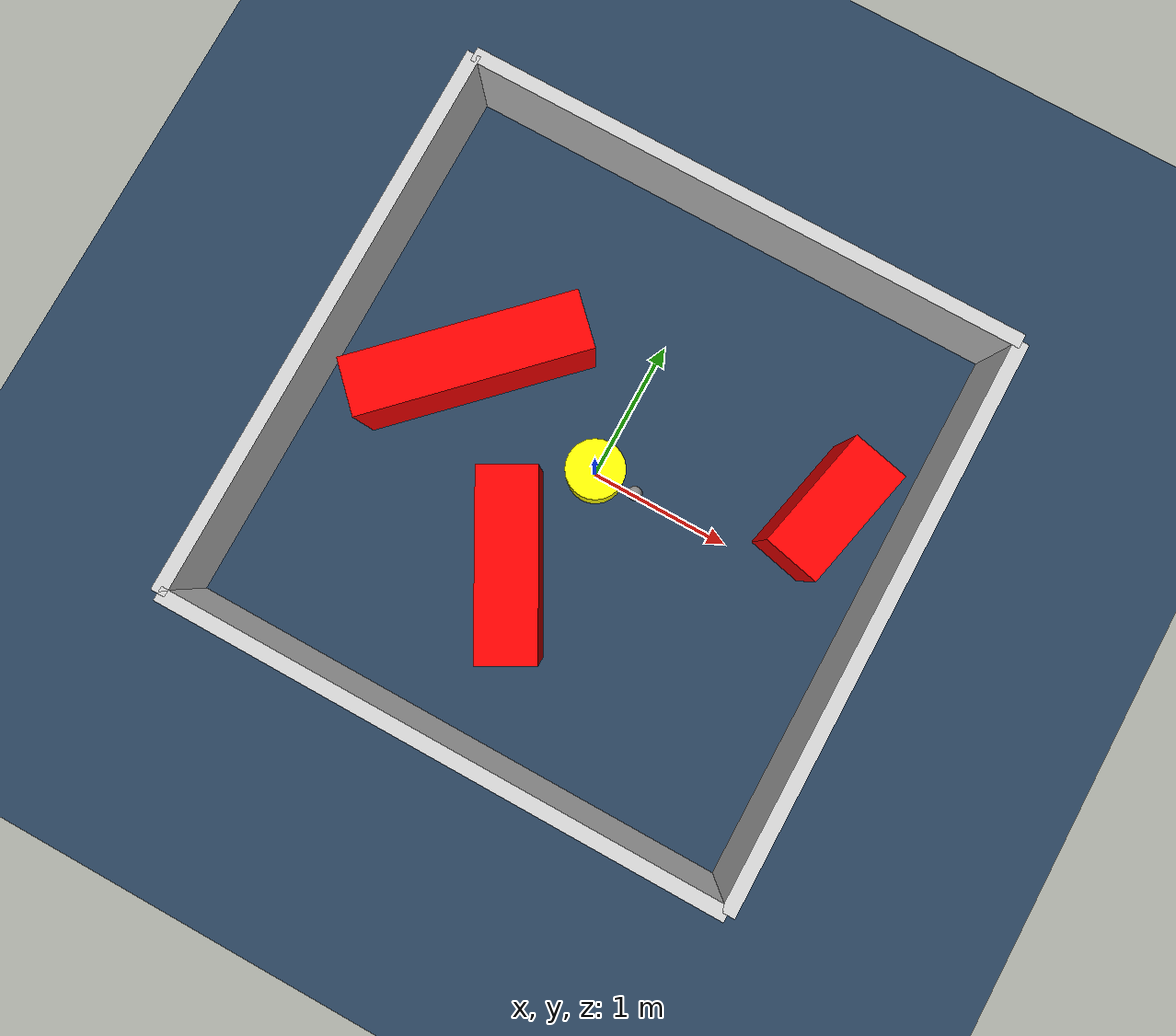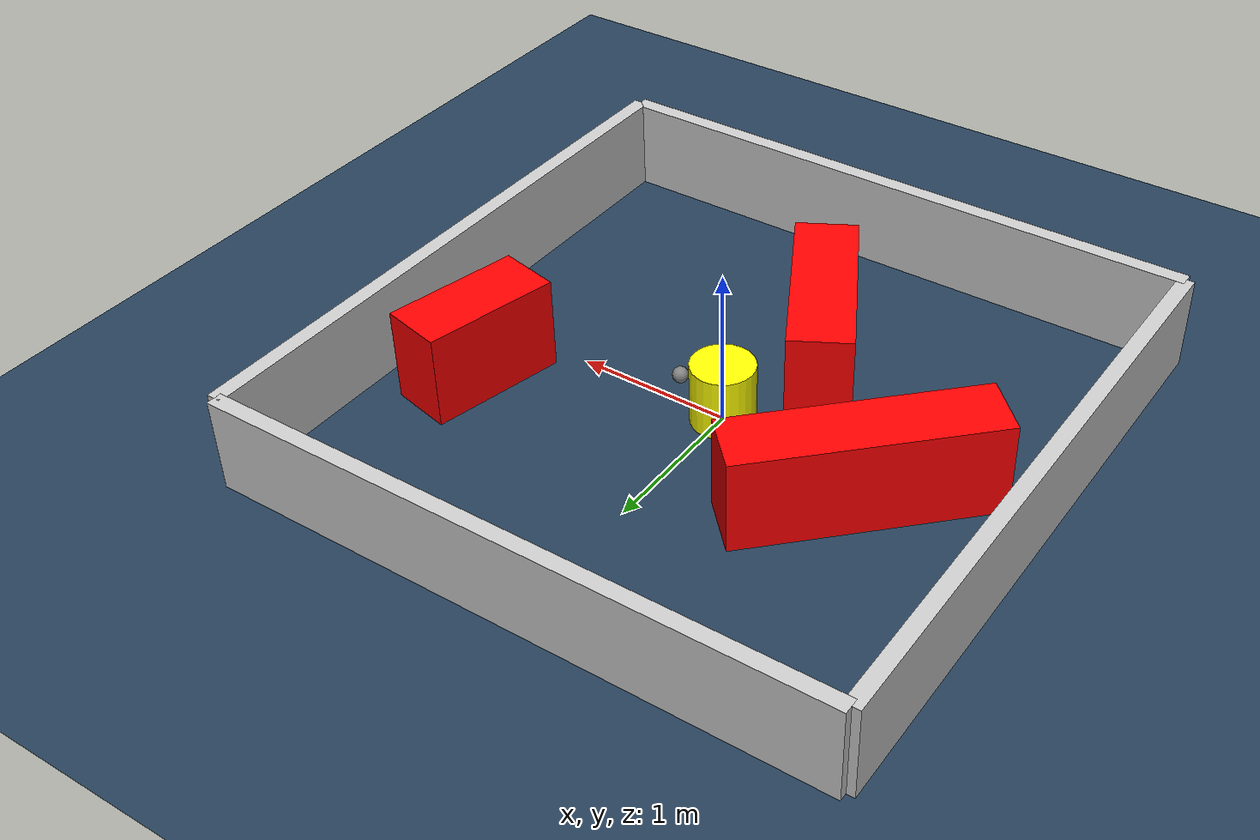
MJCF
<?xml version="1.0" ?>
<mujoco model="generated_environment">
  <option timestep="0.01" integrator="RK4" cone="elliptic"/>
  <default>
    <geom density="1"/>
  </default>
  <asset>
    <texture builtin="gradient" height="3072" rgb1="0.3 0.5 0.7" rgb2="0 0 0" type="skybox" width="512"/>
    <texture builtin="checker" height="300" mark="edge" markrgb="0.8 0.8 0.8" name="groundplane" rgb1="0.2 0.3 0.4" rgb2="0.1 0.2 0.3" type="2d" width="300"/>
    <material name="groundplane" reflectance="0.2" texrepeat="5 5" texture="groundplane" texuniform="true"/>
    <material name="robot" rgba="0.0 1.0 0.0 1"/>
  </asset>
  <worldbody>
    <light dir="0 0 -1" directional="true" pos="0 0 1.5"/>
    <geom condim="4" friction="1.0 0.005 0.001" material="groundplane" name="floor" size="0 0 0.05" type="plane"/>
    <body name="walls">
      <geom name="wall_1" condim="4" pos="-2.0 0.0 0.3" rgba="0.800000011920929 0.800000011920929 0.800000011920929 1.0" size="0.05 2.0 0.3" type="box"/>
      <geom name="wall_2" condim="4" pos="2.0 0.0 0.3" rgba="0.800000011920929 0.800000011920929 0.800000011920929 1.0" size="0.05 2.0 0.3" type="box"/>
      <geom name="wall_3" condim="4" pos="0.0 -2.0 0.3" rgba="0.800000011920929 0.800000011920929 0.800000011920929 1.0" size="2.0 0.05 0.3" type="box"/>
      <geom name="wall_4" condim="4" pos="0.0 2.0 0.3" rgba="0.800000011920929 0.800000011920929 0.800000011920929 1.0" size="2.0 0.05 0.3" type="box"/>
    </body>
    <body name="robot">
      <joint name="joint_x" type="slide" pos="0 0 0" axis="1 0 0"/>
      <joint name="joint_y" type="slide" pos="0 0 0" axis="0 1 0"/>
      <geom name="robot" type="sphere" pos="0.3 0.0 0.2" size="0.05" mass="5." friction="1.0 0.005 0.0001" condim="4" rgba="0.5 0.5 0.5 1.0"/>
      <site name="sensor_ball"/>
    </body>
    <body name="obstacle_movable_1">
      <geom name="obstacle_movable_1" condim="4" pos="0.0 0.0 0.2" euler="0 0 0.0" friction="1.0 0.005 0.001" rgba="1.0 1.0 0.0 1.0" size="0.2 0.2 0.0" type="cylinder" mass="0.1"/>
      <joint type="free"/>
    </body>
    <body name="obstacle_2_static">
      <geom name="obstacle_2_static" condim="4" pos="-0.19128307035924963 -0.8061176779168344 0.3" euler="0 0 298.8534953063789" friction="1.0 0.005 0.001" rgba="1 0 0 1" size="0.6259982815951232 0.2 0.3" type="box"/>
    </body>
    <body name="obstacle_3_static">
      <geom name="obstacle_3_static" condim="4" pos="-1.0681794180561506 0.2400248624634862 0.3" euler="0 0 224.8295761167092" friction="1.0 0.005 0.001" rgba="1 0 0 1" size="0.7989233504878583 0.2 0.3" type="box"/>
    </body>
    <body name="obstacle_4_static">
      <geom name="obstacle_4_static" condim="4" pos="1.449833031588484 0.4926532373394015 0.3" euler="0 0 77.31865360503251" friction="1.0 0.005 0.001" rgba="1 0 0 1" size="0.43869751666711765 0.2 0.3" type="box"/>
    </body>
  </worldbody>
  <actuator>
    <motor name="actuator_x" joint="joint_x" gear="1" ctrlrange="-1 1"/>
    <motor name="actuator_y" joint="joint_y" gear="1" ctrlrange="-1 1"/>
  </actuator>
</mujoco>
